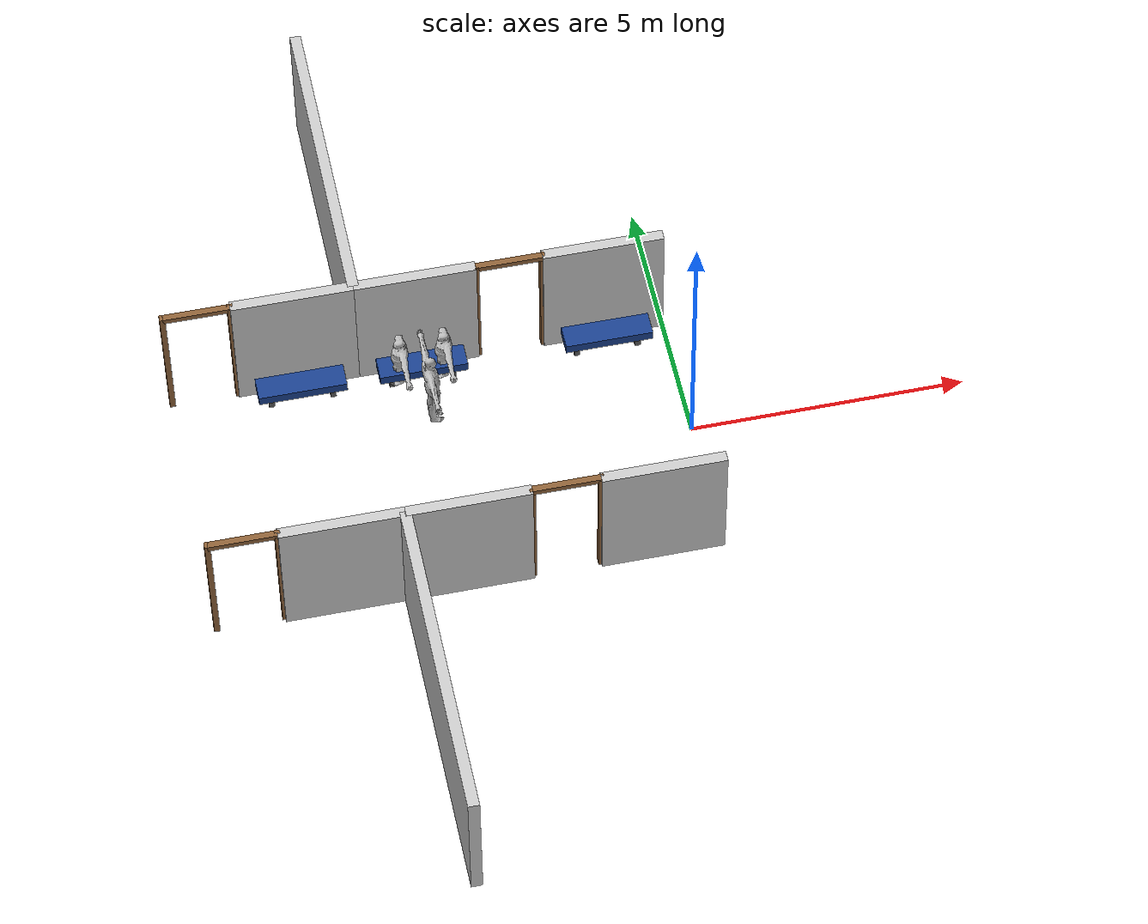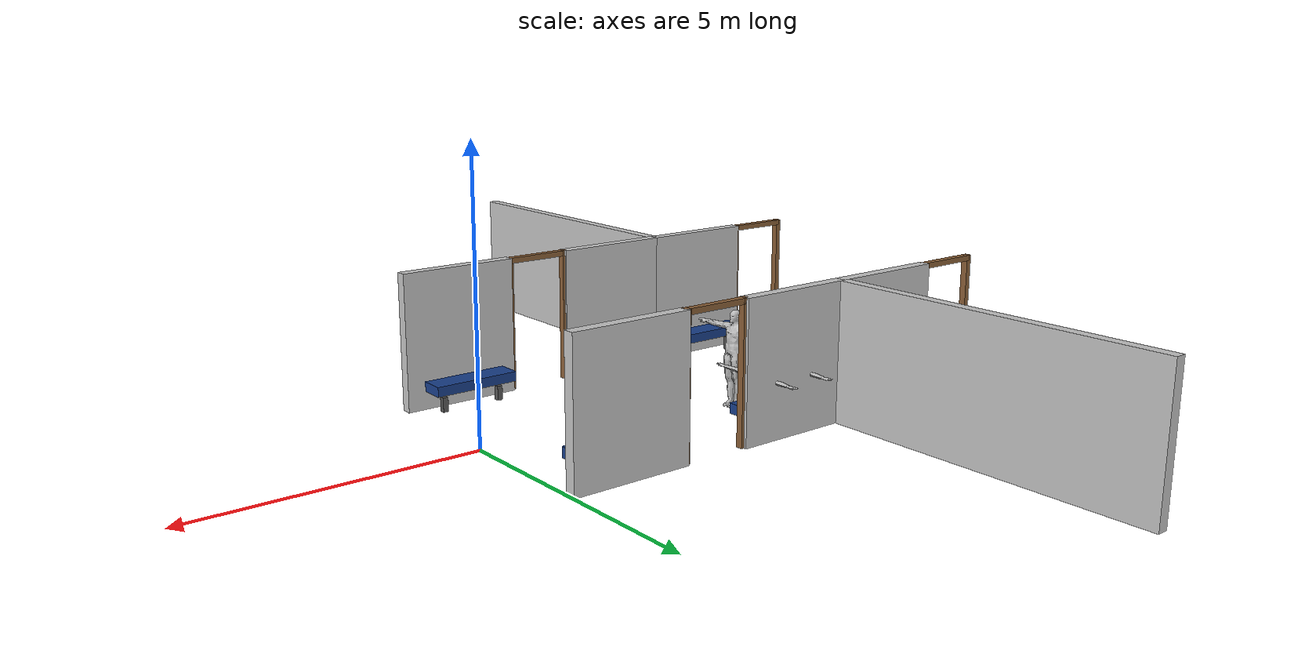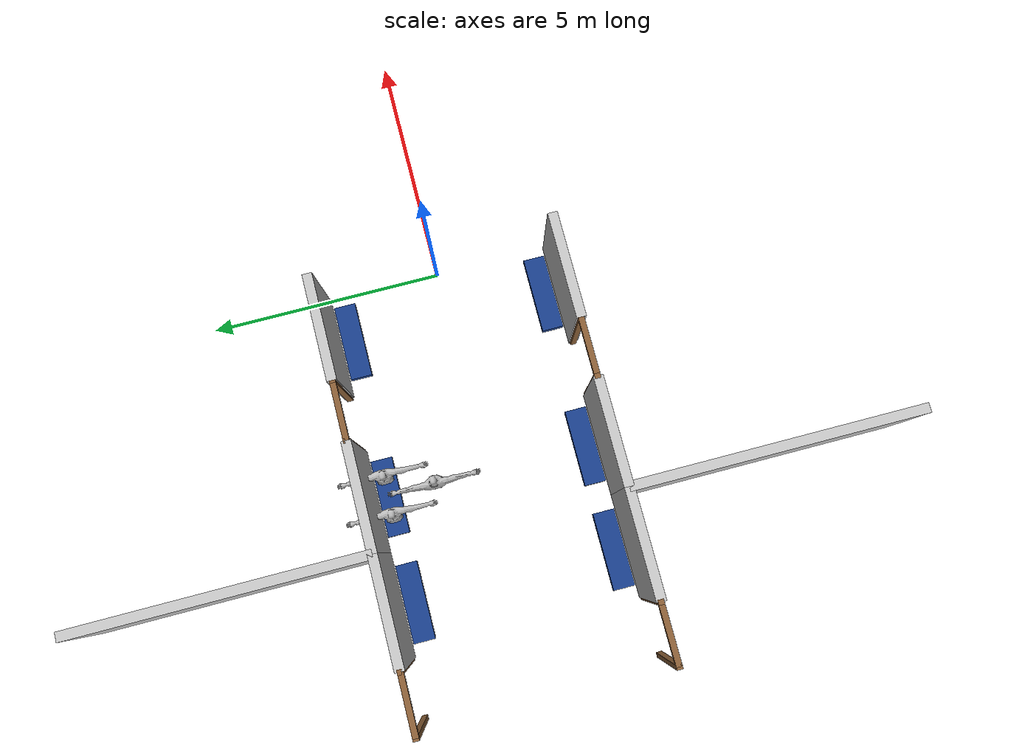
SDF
<sdf version="1.9">
 <world name="hospital_easy">
  <model name="north_partition_3">
   <static>true</static>
   <pose>-5.600 5.500 1.250 0 0 0</pose>
   <link name="link">
    <collision name="collision"><geometry><box><size>0.200 6.000 2.500</size></box></geometry></collision>
    <visual name="visual">
     <geometry><box><size>0.200 6.000 2.500</size></box></geometry>
     <material><ambient>0.78 0.78 0.78 1.0</ambient><diffuse>0.78 0.78 0.78 1.0</diffuse></material>
    </visual>
   </link>
  </model>
  <model name="south_partition_3">
   <static>true</static>
   <pose>-5.600 -5.500 1.250 0 0 0</pose>
   <link name="link">
    <collision name="collision"><geometry><box><size>0.200 6.000 2.500</size></box></geometry></collision>
    <visual name="visual">
     <geometry><box><size>0.200 6.000 2.500</size></box></geometry>
     <material><ambient>0.78 0.78 0.78 1.0</ambient><diffuse>0.78 0.78 0.78 1.0</diffuse></material>
    </visual>
   </link>
  </model>
  <model name="north_room_04_wall_right">
   <static>true</static>
   <pose>-6.700 2.500 1.250 0 0 0</pose>
   <link name="link">
    <collision name="collision"><geometry><box><size>2.200 0.200 2.500</size></box></geometry></collision>
    <visual name="visual">
     <geometry><box><size>2.200 0.200 2.500</size></box></geometry>
     <material><ambient>0.78 0.78 0.78 1.0</ambient><diffuse>0.78 0.78 0.78 1.0</diffuse></material>
    </visual>
   </link>
  </model>
  <model name="north_room_05_wall_left">
   <static>true</static>
   <pose>-4.500 2.500 1.250 0 0 0</pose>
   <link name="link">
    <collision name="collision"><geometry><box><size>2.200 0.200 2.500</size></box></geometry></collision>
    <visual name="visual">
     <geometry><box><size>2.200 0.200 2.500</size></box></geometry>
     <material><ambient>0.78 0.78 0.78 1.0</ambient><diffuse>0.78 0.78 0.78 1.0</diffuse></material>
    </visual>
   </link>
  </model>
  <model name="north_room_05_wall_right">
   <static>true</static>
   <pose>-1.100 2.500 1.250 0 0 0</pose>
   <link name="link">
    <collision name="collision"><geometry><box><size>2.200 0.200 2.500</size></box></geometry></collision>
    <visual name="visual">
     <geometry><box><size>2.200 0.200 2.500</size></box></geometry>
     <material><ambient>0.78 0.78 0.78 1.0</ambient><diffuse>0.78 0.78 0.78 1.0</diffuse></material>
    </visual>
   </link>
  </model>
  <model name="south_room_04_wall_right">
   <static>true</static>
   <pose>-6.700 -2.500 1.250 0 0 0</pose>
   <link name="link">
    <collision name="collision"><geometry><box><size>2.200 0.200 2.500</size></box></geometry></collision>
    <visual name="visual">
     <geometry><box><size>2.200 0.200 2.500</size></box></geometry>
     <material><ambient>0.78 0.78 0.78 1.0</ambient><diffuse>0.78 0.78 0.78 1.0</diffuse></material>
    </visual>
   </link>
  </model>
  <model name="south_room_05_wall_left">
   <static>true</static>
   <pose>-4.500 -2.500 1.250 0 0 0</pose>
   <link name="link">
    <collision name="collision"><geometry><box><size>2.200 0.200 2.500</size></box></geometry></collision>
    <visual name="visual">
     <geometry><box><size>2.200 0.200 2.500</size></box></geometry>
     <material><ambient>0.78 0.78 0.78 1.0</ambient><diffuse>0.78 0.78 0.78 1.0</diffuse></material>
    </visual>
   </link>
  </model>
  <model name="south_room_05_wall_right">
   <static>true</static>
   <pose>-1.100 -2.500 1.250 0 0 0</pose>
   <link name="link">
    <collision name="collision"><geometry><box><size>2.200 0.200 2.500</size></box></geometry></collision>
    <visual name="visual">
     <geometry><box><size>2.200 0.200 2.500</size></box></geometry>
     <material><ambient>0.78 0.78 0.78 1.0</ambient><diffuse>0.78 0.78 0.78 1.0</diffuse></material>
    </visual>
   </link>
  </model>
  <model name="north_door_04_left">
   <static>true</static>
   <pose>-9.000 2.490 1.250 0 0 0</pose>
   <link name="link">
    <collision name="collision"><geometry><box><size>0.100 0.120 2.500</size></box></geometry></collision>
    <visual name="visual">
     <geometry><box><size>0.100 0.120 2.500</size></box></geometry>
     <material><ambient>0.55 0.38 0.22 1.0</ambient><diffuse>0.55 0.38 0.22 1.0</diffuse></material>
    </visual>
   </link>
  </model>
  <model name="north_door_04_right">
   <static>true</static>
   <pose>-7.800 2.490 1.250 0 0 0</pose>
   <link name="link">
    <collision name="collision"><geometry><box><size>0.100 0.120 2.500</size></box></geometry></collision>
    <visual name="visual">
     <geometry><box><size>0.100 0.120 2.500</size></box></geometry>
     <material><ambient>0.55 0.38 0.22 1.0</ambient><diffuse>0.55 0.38 0.22 1.0</diffuse></material>
    </visual>
   </link>
  </model>
  <model name="north_door_04_top">
   <static>true</static>
   <pose>-8.400 2.490 2.450 0 0 0</pose>
   <link name="link">
    <collision name="collision"><geometry><box><size>1.200 0.120 0.100</size></box></geometry></collision>
    <visual name="visual">
     <geometry><box><size>1.200 0.120 0.100</size></box></geometry>
     <material><ambient>0.55 0.38 0.22 1.0</ambient><diffuse>0.55 0.38 0.22 1.0</diffuse></material>
    </visual>
   </link>
  </model>
  <model name="north_door_05_left">
   <static>true</static>
   <pose>-3.400 2.490 1.250 0 0 0</pose>
   <link name="link">
    <collision name="collision"><geometry><box><size>0.100 0.120 2.500</size></box></geometry></collision>
    <visual name="visual">
     <geometry><box><size>0.100 0.120 2.500</size></box></geometry>
     <material><ambient>0.55 0.38 0.22 1.0</ambient><diffuse>0.55 0.38 0.22 1.0</diffuse></material>
    </visual>
   </link>
  </model>
  <model name="north_door_05_right">
   <static>true</static>
   <pose>-2.200 2.490 1.250 0 0 0</pose>
   <link name="link">
    <collision name="collision"><geometry><box><size>0.100 0.120 2.500</size></box></geometry></collision>
    <visual name="visual">
     <geometry><box><size>0.100 0.120 2.500</size></box></geometry>
     <material><ambient>0.55 0.38 0.22 1.0</ambient><diffuse>0.55 0.38 0.22 1.0</diffuse></material>
    </visual>
   </link>
  </model>
  <model name="north_door_05_top">
   <static>true</static>
   <pose>-2.800 2.490 2.450 0 0 0</pose>
   <link name="link">
    <collision name="collision"><geometry><box><size>1.200 0.120 0.100</size></box></geometry></collision>
    <visual name="visual">
     <geometry><box><size>1.200 0.120 0.100</size></box></geometry>
     <material><ambient>0.55 0.38 0.22 1.0</ambient><diffuse>0.55 0.38 0.22 1.0</diffuse></material>
    </visual>
   </link>
  </model>
  <model name="south_door_04_left">
   <static>true</static>
   <pose>-9.000 -2.490 1.250 0 0 0</pose>
   <link name="link">
    <collision name="collision"><geometry><box><size>0.100 0.120 2.500</size></box></geometry></collision>
    <visual name="visual">
     <geometry><box><size>0.100 0.120 2.500</size></box></geometry>
     <material><ambient>0.55 0.38 0.22 1.0</ambient><diffuse>0.55 0.38 0.22 1.0</diffuse></material>
    </visual>
   </link>
  </model>
  <model name="south_door_04_right">
   <static>true</static>
   <pose>-7.800 -2.490 1.250 0 0 0</pose>
   <link name="link">
    <collision name="collision"><geometry><box><size>0.100 0.120 2.500</size></box></geometry></collision>
    <visual name="visual">
     <geometry><box><size>0.100 0.120 2.500</size></box></geometry>
     <material><ambient>0.55 0.38 0.22 1.0</ambient><diffuse>0.55 0.38 0.22 1.0</diffuse></material>
    </visual>
   </link>
  </model>
  <model name="south_door_04_top">
   <static>true</static>
   <pose>-8.400 -2.490 2.450 0 0 0</pose>
   <link name="link">
    <collision name="collision"><geometry><box><size>1.200 0.120 0.100</size></box></geometry></collision>
    <visual name="visual">
     <geometry><box><size>1.200 0.120 0.100</size></box></geometry>
     <material><ambient>0.55 0.38 0.22 1.0</ambient><diffuse>0.55 0.38 0.22 1.0</diffuse></material>
    </visual>
   </link>
  </model>
  <model name="south_door_05_left">
   <static>true</static>
   <pose>-3.400 -2.490 1.250 0 0 0</pose>
   <link name="link">
    <collision name="collision"><geometry><box><size>0.100 0.120 2.500</size></box></geometry></collision>
    <visual name="visual">
     <geometry><box><size>0.100 0.120 2.500</size></box></geometry>
     <material><ambient>0.55 0.38 0.22 1.0</ambient><diffuse>0.55 0.38 0.22 1.0</diffuse></material>
    </visual>
   </link>
  </model>
  <model name="south_door_05_right">
   <static>true</static>
   <pose>-2.200 -2.490 1.250 0 0 0</pose>
   <link name="link">
    <collision name="collision"><geometry><box><size>0.100 0.120 2.500</size></box></geometry></collision>
    <visual name="visual">
     <geometry><box><size>0.100 0.120 2.500</size></box></geometry>
     <material><ambient>0.55 0.38 0.22 1.0</ambient><diffuse>0.55 0.38 0.22 1.0</diffuse></material>
    </visual>
   </link>
  </model>
  <model name="south_door_05_top">
   <static>true</static>
   <pose>-2.800 -2.490 2.450 0 0 0</pose>
   <link name="link">
    <collision name="collision"><geometry><box><size>1.200 0.120 0.100</size></box></geometry></collision>
    <visual name="visual">
     <geometry><box><size>1.200 0.120 0.100</size></box></geometry>
     <material><ambient>0.55 0.38 0.22 1.0</ambient><diffuse>0.55 0.38 0.22 1.0</diffuse></material>
    </visual>
   </link>
  </model>
  <model name="north_room_04_bench_right_seat">
   <static>true</static>
   <pose>-6.700 2.100 0.450 0 0 0</pose>
   <link name="link">
    <collision name="collision"><geometry><box><size>1.600 0.450 0.180</size></box></geometry></collision>
    <visual name="visual">
     <geometry><box><size>1.600 0.450 0.180</size></box></geometry>
     <material><ambient>0.10 0.25 0.55 1.0</ambient><diffuse>0.10 0.25 0.55 1.0</diffuse></material>
    </visual>
   </link>
  </model>
  <model name="north_room_04_bench_right_leg_left">
   <static>true</static>
   <pose>-7.260 2.100 0.135 0 0 0</pose>
   <link name="link">
    <collision name="collision"><geometry><box><size>0.100 0.100 0.270</size></box></geometry></collision>
    <visual name="visual">
     <geometry><box><size>0.100 0.100 0.270</size></box></geometry>
     <material><ambient>0.35 0.35 0.35 1.0</ambient><diffuse>0.35 0.35 0.35 1.0</diffuse></material>
    </visual>
   </link>
  </model>
  <model name="north_room_04_bench_right_leg_right">
   <static>true</static>
   <pose>-6.140 2.100 0.135 0 0 0</pose>
   <link name="link">
    <collision name="collision"><geometry><box><size>0.100 0.100 0.270</size></box></geometry></collision>
    <visual name="visual">
     <geometry><box><size>0.100 0.100 0.270</size></box></geometry>
     <material><ambient>0.35 0.35 0.35 1.0</ambient><diffuse>0.35 0.35 0.35 1.0</diffuse></material>
    </visual>
   </link>
  </model>
  <model name="north_room_05_bench_left_seat">
   <static>true</static>
   <pose>-4.500 2.100 0.450 0 0 0</pose>
   <link name="link">
    <collision name="collision"><geometry><box><size>1.600 0.450 0.180</size></box></geometry></collision>
    <visual name="visual">
     <geometry><box><size>1.600 0.450 0.180</size></box></geometry>
     <material><ambient>0.10 0.25 0.55 1.0</ambient><diffuse>0.10 0.25 0.55 1.0</diffuse></material>
    </visual>
   </link>
  </model>
  <model name="north_room_05_bench_left_leg_left">
   <static>true</static>
   <pose>-5.060 2.100 0.135 0 0 0</pose>
   <link name="link">
    <collision name="collision"><geometry><box><size>0.100 0.100 0.270</size></box></geometry></collision>
    <visual name="visual">
     <geometry><box><size>0.100 0.100 0.270</size></box></geometry>
     <material><ambient>0.35 0.35 0.35 1.0</ambient><diffuse>0.35 0.35 0.35 1.0</diffuse></material>
    </visual>
   </link>
  </model>
  <model name="north_room_05_bench_left_leg_right">
   <static>true</static>
   <pose>-3.940 2.100 0.135 0 0 0</pose>
   <link name="link">
    <collision name="collision"><geometry><box><size>0.100 0.100 0.270</size></box></geometry></collision>
    <visual name="visual">
     <geometry><box><size>0.100 0.100 0.270</size></box></geometry>
     <material><ambient>0.35 0.35 0.35 1.0</ambient><diffuse>0.35 0.35 0.35 1.0</diffuse></material>
    </visual>
   </link>
  </model>
  <model name="north_room_05_bench_right_seat">
   <static>true</static>
   <pose>-1.100 2.100 0.450 0 0 0</pose>
   <link name="link">
    <collision name="collision"><geometry><box><size>1.600 0.450 0.180</size></box></geometry></collision>
    <visual name="visual">
     <geometry><box><size>1.600 0.450 0.180</size></box></geometry>
     <material><ambient>0.10 0.25 0.55 1.0</ambient><diffuse>0.10 0.25 0.55 1.0</diffuse></material>
    </visual>
   </link>
  </model>
  <model name="north_room_05_bench_right_leg_left">
   <static>true</static>
   <pose>-1.660 2.100 0.135 0 0 0</pose>
   <link name="link">
    <collision name="collision"><geometry><box><size>0.100 0.100 0.270</size></box></geometry></collision>
    <visual name="visual">
     <geometry><box><size>0.100 0.100 0.270</size></box></geometry>
     <material><ambient>0.35 0.35 0.35 1.0</ambient><diffuse>0.35 0.35 0.35 1.0</diffuse></material>
    </visual>
   </link>
  </model>
  <model name="north_room_05_bench_right_leg_right">
   <static>true</static>
   <pose>-0.540 2.100 0.135 0 0 0</pose>
   <link name="link">
    <collision name="collision"><geometry><box><size>0.100 0.100 0.270</size></box></geometry></collision>
    <visual name="visual">
     <geometry><box><size>0.100 0.100 0.270</size></box></geometry>
     <material><ambient>0.35 0.35 0.35 1.0</ambient><diffuse>0.35 0.35 0.35 1.0</diffuse></material>
    </visual>
   </link>
  </model>
  <model name="south_room_04_bench_right_seat">
   <static>true</static>
   <pose>-6.700 -2.100 0.450 0 0 0</pose>
   <link name="link">
    <collision name="collision"><geometry><box><size>1.600 0.450 0.180</size></box></geometry></collision>
    <visual name="visual">
     <geometry><box><size>1.600 0.450 0.180</size></box></geometry>
     <material><ambient>0.10 0.25 0.55 1.0</ambient><diffuse>0.10 0.25 0.55 1.0</diffuse></material>
    </visual>
   </link>
  </model>
  <model name="south_room_04_bench_right_leg_left">
   <static>true</static>
   <pose>-7.260 -2.100 0.135 0 0 0</pose>
   <link name="link">
    <collision name="collision"><geometry><box><size>0.100 0.100 0.270</size></box></geometry></collision>
    <visual name="visual">
     <geometry><box><size>0.100 0.100 0.270</size></box></geometry>
     <material><ambient>0.35 0.35 0.35 1.0</ambient><diffuse>0.35 0.35 0.35 1.0</diffuse></material>
    </visual>
   </link>
  </model>
  <model name="south_room_04_bench_right_leg_right">
   <static>true</static>
   <pose>-6.140 -2.100 0.135 0 0 0</pose>
   <link name="link">
    <collision name="collision"><geometry><box><size>0.100 0.100 0.270</size></box></geometry></collision>
    <visual name="visual">
     <geometry><box><size>0.100 0.100 0.270</size></box></geometry>
     <material><ambient>0.35 0.35 0.35 1.0</ambient><diffuse>0.35 0.35 0.35 1.0</diffuse></material>
    </visual>
   </link>
  </model>
  <model name="south_room_05_bench_left_seat">
   <static>true</static>
   <pose>-4.500 -2.100 0.450 0 0 0</pose>
   <link name="link">
    <collision name="collision"><geometry><box><size>1.600 0.450 0.180</size></box></geometry></collision>
    <visual name="visual">
     <geometry><box><size>1.600 0.450 0.180</size></box></geometry>
     <material><ambient>0.10 0.25 0.55 1.0</ambient><diffuse>0.10 0.25 0.55 1.0</diffuse></material>
    </visual>
   </link>
  </model>
  <model name="south_room_05_bench_left_leg_left">
   <static>true</static>
   <pose>-5.060 -2.100 0.135 0 0 0</pose>
   <link name="link">
    <collision name="collision"><geometry><box><size>0.100 0.100 0.270</size></box></geometry></collision>
    <visual name="visual">
     <geometry><box><size>0.100 0.100 0.270</size></box></geometry>
     <material><ambient>0.35 0.35 0.35 1.0</ambient><diffuse>0.35 0.35 0.35 1.0</diffuse></material>
    </visual>
   </link>
  </model>
  <model name="south_room_05_bench_left_leg_right">
   <static>true</static>
   <pose>-3.940 -2.100 0.135 0 0 0</pose>
   <link name="link">
    <collision name="collision"><geometry><box><size>0.100 0.100 0.270</size></box></geometry></collision>
    <visual name="visual">
     <geometry><box><size>0.100 0.100 0.270</size></box></geometry>
     <material><ambient>0.35 0.35 0.35 1.0</ambient><diffuse>0.35 0.35 0.35 1.0</diffuse></material>
    </visual>
   </link>
  </model>
  <model name="south_room_05_bench_right_seat">
   <static>true</static>
   <pose>-1.100 -2.100 0.450 0 0 0</pose>
   <link name="link">
    <collision name="collision"><geometry><box><size>1.600 0.450 0.180</size></box></geometry></collision>
    <visual name="visual">
     <geometry><box><size>1.600 0.450 0.180</size></box></geometry>
     <material><ambient>0.10 0.25 0.55 1.0</ambient><diffuse>0.10 0.25 0.55 1.0</diffuse></material>
    </visual>
   </link>
  </model>
  <model name="south_room_05_bench_right_leg_left">
   <static>true</static>
   <pose>-1.660 -2.100 0.135 0 0 0</pose>
   <link name="link">
    <collision name="collision"><geometry><box><size>0.100 0.100 0.270</size></box></geometry></collision>
    <visual name="visual">
     <geometry><box><size>0.100 0.100 0.270</size></box></geometry>
     <material><ambient>0.35 0.35 0.35 1.0</ambient><diffuse>0.35 0.35 0.35 1.0</diffuse></material>
    </visual>
   </link>
  </model>
  <model name="south_room_05_bench_right_leg_right">
   <static>true</static>
   <pose>-0.540 -2.100 0.135 0 0 0</pose>
   <link name="link">
    <collision name="collision"><geometry><box><size>0.100 0.100 0.270</size></box></geometry></collision>
    <visual name="visual">
     <geometry><box><size>0.100 0.100 0.270</size></box></geometry>
     <material><ambient>0.35 0.35 0.35 1.0</ambient><diffuse>0.35 0.35 0.35 1.0</diffuse></material>
    </visual>
   </link>
  </model>
  <model name="hospital_room_05_seated_1">
   <static>true</static>
   <pose>-4.900 2.100 0.650 0 0 -1.57080</pose>
   <link name="link">
    <visual name="visual">
     <geometry><mesh><uri>model://human/meshes/walk.dae</uri><scale>1.0 1.0 0.650</scale></mesh></geometry>
    </visual>
    <collision name="collision">
     <pose>0 0 0.200 0 0 0</pose>
     <geometry><cylinder><radius>0.28</radius><length>1.700</length></cylinder></geometry>
    </collision>
   </link>
  </model>
  <model name="hospital_room_05_seated_2">
   <static>true</static>
   <pose>-4.100 2.100 0.650 0 0 -1.57080</pose>
   <link name="link">
    <visual name="visual">
     <geometry><mesh><uri>model://human/meshes/walk.dae</uri><scale>1.0 1.0 0.650</scale></mesh></geometry>
    </visual>
    <collision name="collision">
     <pose>0 0 0.200 0 0 0</pose>
     <geometry><cylinder><radius>0.28</radius><length>1.700</length></cylinder></geometry>
    </collision>
   </link>
  </model>
  <model name="hospital_room_05_standing">
   <static>true</static>
   <pose>-4.500 1.100 1.000 0 0 1.57080</pose>
   <link name="link">
    <visual name="visual">
     <geometry><mesh><uri>model://human/meshes/walk.dae</uri><scale>1.0 1.0 1.000</scale></mesh></geometry>
    </visual>
    <collision name="collision">
     <pose>0 0 -0.150 0 0 0</pose>
     <geometry><cylinder><radius>0.28</radius><length>1.700</length></cylinder></geometry>
    </collision>
   </link>
  </model>
 </world>
</sdf>
